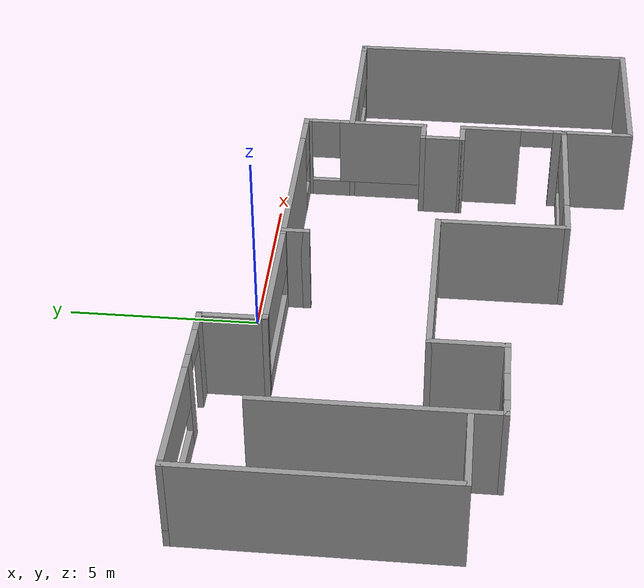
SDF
<?xml version='1.0'?>
<sdf version='1.7'>
  <model name='home'>
    <pose>1.33369 -4.43199 0 0 -0 0</pose>
    <link name='Wall_1'>
      <pose>-2.3 3.775 0 0 -0 0</pose>
      <visual name='Wall_1_Visual_0'>
        <pose>-1.7772 0 1.25 0 -0 0</pose>
        <geometry>
          <box>
            <size>0.195597 0.15 2.5</size>
          </box>
        </geometry>
        <material>
          <script>
            <uri>file://media/materials/scripts/gazebo.material</uri>
            <name>Gazebo/Grey</name>
          </script>
          <ambient>1 1 1 1</ambient>
        </material>
        <meta>
          <layer>0</layer>
        </meta>
      </visual>
      <collision name='Wall_1_Collision_0'>
        <geometry>
          <box>
            <size>0.195597 0.15 2.5</size>
          </box>
        </geometry>
        <pose>-1.7772 0 1.25 0 -0 0</pose>
      </collision>
      <visual name='Wall_1_Visual_1'>
        <pose>0.097799 0 0.25 0 -0 0</pose>
        <geometry>
          <box>
            <size>3.5544 0.15 0.5</size>
          </box>
        </geometry>
        <material>
          <script>
            <uri>file://media/materials/scripts/gazebo.material</uri>
            <name>Gazebo/Grey</name>
          </script>
          <ambient>1 1 1 1</ambient>
        </material>
        <meta>
          <layer>0</layer>
        </meta>
      </visual>
      <collision name='Wall_1_Collision_1'>
        <geometry>
          <box>
            <size>3.5544 0.15 0.5</size>
          </box>
        </geometry>
        <pose>0.097799 0 0.25 0 -0 0</pose>
      </collision>
      <visual name='Wall_1_Visual_2'>
        <pose>1.74801 0 1.5 0 -0 0</pose>
        <geometry>
          <box>
            <size>0.253984 0.15 2</size>
          </box>
        </geometry>
        <material>
          <script>
            <uri>file://media/materials/scripts/gazebo.material</uri>
            <name>Gazebo/Grey</name>
          </script>
          <ambient>1 1 1 1</ambient>
        </material>
        <meta>
          <layer>0</layer>
        </meta>
      </visual>
      <collision name='Wall_1_Collision_2'>
        <geometry>
          <box>
            <size>0.253984 0.15 2</size>
          </box>
        </geometry>
        <pose>1.74801 0 1.5 0 -0 0</pose>
      </collision>
      <visual name='Wall_1_Visual_3'>
        <pose>-0.029193 0 1.9 0 -0 0</pose>
        <geometry>
          <box>
            <size>3.30042 0.15 1.2</size>
          </box>
        </geometry>
        <material>
          <script>
            <uri>file://media/materials/scripts/gazebo.material</uri>
            <name>Gazebo/Grey</name>
          </script>
          <ambient>1 1 1 1</ambient>
        </material>
        <meta>
          <layer>0</layer>
        </meta>
      </visual>
      <collision name='Wall_1_Collision_3'>
        <geometry>
          <box>
            <size>3.30042 0.15 1.2</size>
          </box>
        </geometry>
        <pose>-0.029193 0 1.9 0 -0 0</pose>
      </collision>
    </link>
    <link name='Wall_10'>
      <pose>2.55 -3.525 0 0 -0 3.14159</pose>
      <visual name='Wall_10_Visual_0'>
        <pose>-2.27293 0 1.25 0 -0 0</pose>
        <geometry>
          <box>
            <size>0.204144 0.15 2.5</size>
          </box>
        </geometry>
        <material>
          <script>
            <uri>file://media/materials/scripts/gazebo.material</uri>
            <name>Gazebo/Grey</name>
          </script>
          <ambient>1 1 1 1</ambient>
        </material>
        <meta>
          <layer>0</layer>
        </meta>
      </visual>
      <collision name='Wall_10_Collision_0'>
        <geometry>
          <box>
            <size>0.204144 0.15 2.5</size>
          </box>
        </geometry>
        <pose>-2.27293 0 1.25 0 -0 0</pose>
      </collision>
      <visual name='Wall_10_Visual_1'>
        <pose>0.102072 0 0.25 0 -0 0</pose>
        <geometry>
          <box>
            <size>4.54586 0.15 0.5</size>
          </box>
        </geometry>
        <material>
          <script>
            <uri>file://media/materials/scripts/gazebo.material</uri>
            <name>Gazebo/Grey</name>
          </script>
          <ambient>1 1 1 1</ambient>
        </material>
        <meta>
          <layer>0</layer>
        </meta>
      </visual>
      <collision name='Wall_10_Collision_1'>
        <geometry>
          <box>
            <size>4.54586 0.15 0.5</size>
          </box>
        </geometry>
        <pose>0.102072 0 0.25 0 -0 0</pose>
      </collision>
      <visual name='Wall_10_Visual_2'>
        <pose>1.83208 0 1.5 0 -0 0</pose>
        <geometry>
          <box>
            <size>1.08584 0.15 2</size>
          </box>
        </geometry>
        <material>
          <script>
            <uri>file://media/materials/scripts/gazebo.material</uri>
            <name>Gazebo/Grey</name>
          </script>
          <ambient>1 1 1 1</ambient>
        </material>
        <meta>
          <layer>0</layer>
        </meta>
      </visual>
      <collision name='Wall_10_Collision_2'>
        <geometry>
          <box>
            <size>1.08584 0.15 2</size>
          </box>
        </geometry>
        <pose>1.83208 0 1.5 0 -0 0</pose>
      </collision>
      <visual name='Wall_10_Visual_3'>
        <pose>-0.440846 0 1.9 0 -0 0</pose>
        <geometry>
          <box>
            <size>3.46002 0.15 1.2</size>
          </box>
        </geometry>
        <material>
          <script>
            <uri>file://media/materials/scripts/gazebo.material</uri>
            <name>Gazebo/Grey</name>
          </script>
          <ambient>1 1 1 1</ambient>
        </material>
        <meta>
          <layer>0</layer>
        </meta>
      </visual>
      <collision name='Wall_10_Collision_3'>
        <geometry>
          <box>
            <size>3.46002 0.15 1.2</size>
          </box>
        </geometry>
        <pose>-0.440846 0 1.9 0 -0 0</pose>
      </collision>
    </link>
    <link name='Wall_11'>
      <collision name='Wall_11_Collision'>
        <geometry>
          <box>
            <size>3.5 0.15 2.5</size>
          </box>
        </geometry>
        <pose>0 0 1.25 0 -0 0</pose>
      </collision>
      <visual name='Wall_11_Visual'>
        <pose>0 0 1.25 0 -0 0</pose>
        <geometry>
          <box>
            <size>3.5 0.15 2.5</size>
          </box>
        </geometry>
        <material>
          <script>
            <uri>file://media/materials/scripts/gazebo.material</uri>
            <name>Gazebo/Grey</name>
          </script>
          <ambient>1 1 1 1</ambient>
        </material>
        <meta>
          <layer>0</layer>
        </meta>
      </visual>
      <pose>0.25 -1.85 0 0 -0 1.5708</pose>
    </link>
    <link name='Wall_12'>
      <collision name='Wall_12_Collision'>
        <geometry>
          <box>
            <size>5 0.15 2.5</size>
          </box>
        </geometry>
        <pose>0 0 1.25 0 -0 0</pose>
      </collision>
      <visual name='Wall_12_Visual'>
        <pose>0 0 1.25 0 -0 0</pose>
        <geometry>
          <box>
            <size>5 0.15 2.5</size>
          </box>
        </geometry>
        <material>
          <script>
            <uri>file://media/materials/scripts/gazebo.material</uri>
            <name>Gazebo/Grey</name>
          </script>
          <ambient>1 1 1 1</ambient>
        </material>
        <meta>
          <layer>0</layer>
        </meta>
      </visual>
      <pose>-2.175 -0.175 0 0 -0 3.14159</pose>
    </link>
    <link name='Wall_13'>
      <collision name='Wall_13_Collision'>
        <geometry>
          <box>
            <size>2 0.15 2.5</size>
          </box>
        </geometry>
        <pose>0 0 1.25 0 -0 0</pose>
      </collision>
      <visual name='Wall_13_Visual'>
        <pose>0 0 1.25 0 -0 0</pose>
        <geometry>
          <box>
            <size>2 0.15 2.5</size>
          </box>
        </geometry>
        <material>
          <script>
            <uri>file://media/materials/scripts/gazebo.material</uri>
            <name>Gazebo/Grey</name>
          </script>
          <ambient>1 1 1 1</ambient>
        </material>
        <meta>
          <layer>0</layer>
        </meta>
      </visual>
      <pose>-4.6 -1.1 0 0 -0 -1.5708</pose>
    </link>
    <link name='Wall_14'>
      <pose>-5.775 -2.025 0 0 -0 3.14159</pose>
      <visual name='Wall_14_Visual_0'>
        <pose>-0.710889 0 1.25 0 -0 0</pose>
        <geometry>
          <box>
            <size>1.07822 0.15 2.5</size>
          </box>
        </geometry>
        <material>
          <script>
            <uri>file://media/materials/scripts/gazebo.material</uri>
            <name>Gazebo/Grey</name>
          </script>
          <ambient>1 1 1 1</ambient>
        </material>
        <meta>
          <layer>0</layer>
        </meta>
      </visual>
      <collision name='Wall_14_Collision_0'>
        <geometry>
          <box>
            <size>1.07822 0.15 2.5</size>
          </box>
        </geometry>
        <pose>-0.710889 0 1.25 0 -0 0</pose>
      </collision>
      <visual name='Wall_14_Visual_1'>
        <pose>0.989111 0 1.25 0 -0 0</pose>
        <geometry>
          <box>
            <size>0.521779 0.15 2.5</size>
          </box>
        </geometry>
        <material>
          <script>
            <uri>file://media/materials/scripts/gazebo.material</uri>
            <name>Gazebo/Grey</name>
          </script>
          <ambient>1 1 1 1</ambient>
        </material>
        <meta>
          <layer>0</layer>
        </meta>
      </visual>
      <collision name='Wall_14_Collision_1'>
        <geometry>
          <box>
            <size>0.521779 0.15 2.5</size>
          </box>
        </geometry>
        <pose>0.989111 0 1.25 0 -0 0</pose>
      </collision>
      <visual name='Wall_14_Visual_2'>
        <pose>0.278221 0 2.25 0 -0 0</pose>
        <geometry>
          <box>
            <size>0.9 0.15 0.5</size>
          </box>
        </geometry>
        <material>
          <script>
            <uri>file://media/materials/scripts/gazebo.material</uri>
            <name>Gazebo/Grey</name>
          </script>
          <ambient>1 1 1 1</ambient>
        </material>
        <meta>
          <layer>0</layer>
        </meta>
      </visual>
      <collision name='Wall_14_Collision_2'>
        <geometry>
          <box>
            <size>0.9 0.15 0.5</size>
          </box>
        </geometry>
        <pose>0.278221 0 2.25 0 -0 0</pose>
      </collision>
    </link>
    <link name='Wall_15'>
      <collision name='Wall_15_Collision'>
        <geometry>
          <box>
            <size>6 0.15 2.5</size>
          </box>
        </geometry>
        <pose>0 0 1.25 0 -0 0</pose>
      </collision>
      <visual name='Wall_15_Visual'>
        <pose>0 0 1.25 0 -0 0</pose>
        <geometry>
          <box>
            <size>6 0.15 2.5</size>
          </box>
        </geometry>
        <material>
          <script>
            <uri>file://media/materials/scripts/gazebo.material</uri>
            <name>Gazebo/Grey</name>
          </script>
          <ambient>1 1 1 1</ambient>
        </material>
        <meta>
          <layer>0</layer>
        </meta>
      </visual>
      <pose>-6.95 0.9 0 0 -0 1.5708</pose>
    </link>
    <link name='Wall_17'>
      <collision name='Wall_17_Collision'>
        <geometry>
          <box>
            <size>1.75 0.15 2.5</size>
          </box>
        </geometry>
        <pose>0 0 1.25 0 -0 0</pose>
      </collision>
      <visual name='Wall_17_Visual'>
        <pose>0 0 1.25 0 -0 0</pose>
        <geometry>
          <box>
            <size>1.75 0.15 2.5</size>
          </box>
        </geometry>
        <material>
          <script>
            <uri>file://media/materials/scripts/gazebo.material</uri>
            <name>Gazebo/Grey</name>
          </script>
          <ambient>1 1 1 1</ambient>
        </material>
        <meta>
          <layer>0</layer>
        </meta>
      </visual>
      <pose>-4.1 4.575 0 0 -0 1.5708</pose>
    </link>
    <link name='Wall_18'>
      <pose>-6.65 5.375 0 0 -0 3.14159</pose>
      <visual name='Wall_18_Visual_0'>
        <pose>-2.28809 0 1.25 0 -0 0</pose>
        <geometry>
          <box>
            <size>0.673815 0.15 2.5</size>
          </box>
        </geometry>
        <material>
          <script>
            <uri>file://media/materials/scripts/gazebo.material</uri>
            <name>Gazebo/Grey</name>
          </script>
          <ambient>1 1 1 1</ambient>
        </material>
        <meta>
          <layer>0</layer>
        </meta>
      </visual>
      <collision name='Wall_18_Collision_0'>
        <geometry>
          <box>
            <size>0.673815 0.15 2.5</size>
          </box>
        </geometry>
        <pose>-2.28809 0 1.25 0 -0 0</pose>
      </collision>
      <visual name='Wall_18_Visual_1'>
        <pose>-0.824481 0 1.25 0 -0 0</pose>
        <geometry>
          <box>
            <size>0.45341 0.15 2.5</size>
          </box>
        </geometry>
        <material>
          <script>
            <uri>file://media/materials/scripts/gazebo.material</uri>
            <name>Gazebo/Grey</name>
          </script>
          <ambient>1 1 1 1</ambient>
        </material>
        <meta>
          <layer>0</layer>
        </meta>
      </visual>
      <collision name='Wall_18_Collision_1'>
        <geometry>
          <box>
            <size>0.45341 0.15 2.5</size>
          </box>
        </geometry>
        <pose>-0.824481 0 1.25 0 -0 0</pose>
      </collision>
      <visual name='Wall_18_Visual_2'>
        <pose>1.01361 0 0.25 0 -0 0</pose>
        <geometry>
          <box>
            <size>3.22278 0.15 0.5</size>
          </box>
        </geometry>
        <material>
          <script>
            <uri>file://media/materials/scripts/gazebo.material</uri>
            <name>Gazebo/Grey</name>
          </script>
          <ambient>1 1 1 1</ambient>
        </material>
        <meta>
          <layer>0</layer>
        </meta>
      </visual>
      <collision name='Wall_18_Collision_2'>
        <geometry>
          <box>
            <size>3.22278 0.15 0.5</size>
          </box>
        </geometry>
        <pose>1.01361 0 0.25 0 -0 0</pose>
      </collision>
      <visual name='Wall_18_Visual_3'>
        <pose>2.53082 0 1.5 0 -0 0</pose>
        <geometry>
          <box>
            <size>0.188359 0.15 2</size>
          </box>
        </geometry>
        <material>
          <script>
            <uri>file://media/materials/scripts/gazebo.material</uri>
            <name>Gazebo/Grey</name>
          </script>
          <ambient>1 1 1 1</ambient>
        </material>
        <meta>
          <layer>0</layer>
        </meta>
      </visual>
      <collision name='Wall_18_Collision_3'>
        <geometry>
          <box>
            <size>0.188359 0.15 2</size>
          </box>
        </geometry>
        <pose>2.53082 0 1.5 0 -0 0</pose>
      </collision>
      <visual name='Wall_18_Visual_4'>
        <pose>0.919433 0 1.9 0 -0 0</pose>
        <geometry>
          <box>
            <size>3.03442 0.15 1.2</size>
          </box>
        </geometry>
        <material>
          <script>
            <uri>file://media/materials/scripts/gazebo.material</uri>
            <name>Gazebo/Grey</name>
          </script>
          <ambient>1 1 1 1</ambient>
        </material>
        <meta>
          <layer>0</layer>
        </meta>
      </visual>
      <collision name='Wall_18_Collision_4'>
        <geometry>
          <box>
            <size>3.03442 0.15 1.2</size>
          </box>
        </geometry>
        <pose>0.919433 0 1.9 0 -0 0</pose>
      </collision>
      <visual name='Wall_18_Visual_5'>
        <pose>-1.50118 0 2.25 0 -0 0</pose>
        <geometry>
          <box>
            <size>0.9 0.15 0.5</size>
          </box>
        </geometry>
        <material>
          <script>
            <uri>file://media/materials/scripts/gazebo.material</uri>
            <name>Gazebo/Grey</name>
          </script>
          <ambient>1 1 1 1</ambient>
        </material>
        <meta>
          <layer>0</layer>
        </meta>
      </visual>
      <collision name='Wall_18_Collision_5'>
        <geometry>
          <box>
            <size>0.9 0.15 0.5</size>
          </box>
        </geometry>
        <pose>-1.50118 0 2.25 0 -0 0</pose>
      </collision>
    </link>
    <link name='Wall_19'>
      <collision name='Wall_19_Collision'>
        <geometry>
          <box>
            <size>6.75 0.15 2.5</size>
          </box>
        </geometry>
        <pose>0 0 1.25 0 -0 0</pose>
      </collision>
      <visual name='Wall_19_Visual'>
        <pose>0 0 1.25 0 -0 0</pose>
        <geometry>
          <box>
            <size>6.75 0.15 2.5</size>
          </box>
        </geometry>
        <material>
          <script>
            <uri>file://media/materials/scripts/gazebo.material</uri>
            <name>Gazebo/Grey</name>
          </script>
          <ambient>1 1 1 1</ambient>
        </material>
        <meta>
          <layer>0</layer>
        </meta>
      </visual>
      <pose>-9.2 2.075 0 0 -0 -1.5708</pose>
    </link>
    <link name='Wall_2'>
      <collision name='Wall_2_Collision'>
        <geometry>
          <box>
            <size>0.75 0.15 2.5</size>
          </box>
        </geometry>
        <pose>0 0 1.25 0 -0 0</pose>
      </collision>
      <visual name='Wall_2_Visual'>
        <pose>0 0 1.25 0 -0 0</pose>
        <geometry>
          <box>
            <size>0.75 0.15 2.5</size>
          </box>
        </geometry>
        <material>
          <script>
            <uri>file://media/materials/scripts/gazebo.material</uri>
            <name>Gazebo/Grey</name>
          </script>
          <ambient>1 1 1 1</ambient>
        </material>
        <meta>
          <layer>0</layer>
        </meta>
      </visual>
      <pose>-0.5 3.475 0 0 -0 -1.5708</pose>
    </link>
    <link name='Wall_20'>
      <collision name='Wall_20_Collision'>
        <geometry>
          <box>
            <size>2.25 0.15 2.5</size>
          </box>
        </geometry>
        <pose>0 0 1.25 0 -0 0</pose>
      </collision>
      <visual name='Wall_20_Visual'>
        <pose>0 0 1.25 0 -0 0</pose>
        <geometry>
          <box>
            <size>2.25 0.15 2.5</size>
          </box>
        </geometry>
        <material>
          <script>
            <uri>file://media/materials/scripts/gazebo.material</uri>
            <name>Gazebo/Grey</name>
          </script>
          <ambient>1 1 1 1</ambient>
        </material>
        <meta>
          <layer>0</layer>
        </meta>
      </visual>
      <pose>-8.15 -1.225 0 0 -0 0</pose>
    </link>
    <link name='Wall_22'>
      <collision name='Wall_22_Collision'>
        <geometry>
          <box>
            <size>2 0.15 2.5</size>
          </box>
        </geometry>
        <pose>0 0 1.25 0 -0 0</pose>
      </collision>
      <visual name='Wall_22_Visual'>
        <pose>0 0 1.25 0 -0 0</pose>
        <geometry>
          <box>
            <size>2 0.15 2.5</size>
          </box>
        </geometry>
        <material>
          <script>
            <uri>file://media/materials/scripts/gazebo.material</uri>
            <name>Gazebo/Grey</name>
          </script>
          <ambient>1 1 1 1</ambient>
        </material>
        <meta>
          <layer>0</layer>
        </meta>
      </visual>
      <pose>4.85 -4.45 0 0 -0 -1.5708</pose>
    </link>
    <link name='Wall_23'>
      <collision name='Wall_23_Collision'>
        <geometry>
          <box>
            <size>4.5 0.15 2.5</size>
          </box>
        </geometry>
        <pose>0 0 1.25 0 -0 0</pose>
      </collision>
      <visual name='Wall_23_Visual'>
        <pose>0 0 1.25 0 -0 0</pose>
        <geometry>
          <box>
            <size>4.5 0.15 2.5</size>
          </box>
        </geometry>
        <material>
          <script>
            <uri>file://media/materials/scripts/gazebo.material</uri>
            <name>Gazebo/Grey</name>
          </script>
          <ambient>1 1 1 1</ambient>
        </material>
        <meta>
          <layer>0</layer>
        </meta>
      </visual>
      <pose>7.025 -5.375 0 0 -0 0</pose>
    </link>
    <link name='Wall_24'>
      <collision name='Wall_24_Collision'>
        <geometry>
          <box>
            <size>8 0.15 2.5</size>
          </box>
        </geometry>
        <pose>0 0 1.25 0 -0 0</pose>
      </collision>
      <visual name='Wall_24_Visual'>
        <pose>0 0 1.25 0 -0 0</pose>
        <geometry>
          <box>
            <size>8 0.15 2.5</size>
          </box>
        </geometry>
        <material>
          <script>
            <uri>file://media/materials/scripts/gazebo.material</uri>
            <name>Gazebo/Grey</name>
          </script>
          <ambient>1 1 1 1</ambient>
        </material>
        <meta>
          <layer>0</layer>
        </meta>
      </visual>
      <pose>9.2 -1.45 0 0 -0 1.5708</pose>
    </link>
    <link name='Wall_25'>
      <pose>7.025 2.475 0 0 -0 3.14159</pose>
      <visual name='Wall_25_Visual_0'>
        <pose>-2.08764 0 1.25 0 -0 0</pose>
        <geometry>
          <box>
            <size>0.324712 0.15 2.5</size>
          </box>
        </geometry>
        <material>
          <script>
            <uri>file://media/materials/scripts/gazebo.material</uri>
            <name>Gazebo/Grey</name>
          </script>
          <ambient>1 1 1 1</ambient>
        </material>
        <meta>
          <layer>0</layer>
        </meta>
      </visual>
      <collision name='Wall_25_Collision_0'>
        <geometry>
          <box>
            <size>0.324712 0.15 2.5</size>
          </box>
        </geometry>
        <pose>-2.08764 0 1.25 0 -0 0</pose>
      </collision>
      <visual name='Wall_25_Visual_1'>
        <pose>0.162356 0 0.25 0 -0 0</pose>
        <geometry>
          <box>
            <size>4.17529 0.15 0.5</size>
          </box>
        </geometry>
        <material>
          <script>
            <uri>file://media/materials/scripts/gazebo.material</uri>
            <name>Gazebo/Grey</name>
          </script>
          <ambient>1 1 1 1</ambient>
        </material>
        <meta>
          <layer>0</layer>
        </meta>
      </visual>
      <collision name='Wall_25_Collision_1'>
        <geometry>
          <box>
            <size>4.17529 0.15 0.5</size>
          </box>
        </geometry>
        <pose>0.162356 0 0.25 0 -0 0</pose>
      </collision>
      <visual name='Wall_25_Visual_2'>
        <pose>1.54656 0 1.5 0 -0 0</pose>
        <geometry>
          <box>
            <size>1.40687 0.15 2</size>
          </box>
        </geometry>
        <material>
          <script>
            <uri>file://media/materials/scripts/gazebo.material</uri>
            <name>Gazebo/Grey</name>
          </script>
          <ambient>1 1 1 1</ambient>
        </material>
        <meta>
          <layer>0</layer>
        </meta>
      </visual>
      <collision name='Wall_25_Collision_2'>
        <geometry>
          <box>
            <size>1.40687 0.15 2</size>
          </box>
        </geometry>
        <pose>1.54656 0 1.5 0 -0 0</pose>
      </collision>
      <visual name='Wall_25_Visual_3'>
        <pose>-0.54108 0 1.9 0 -0 0</pose>
        <geometry>
          <box>
            <size>2.76842 0.15 1.2</size>
          </box>
        </geometry>
        <material>
          <script>
            <uri>file://media/materials/scripts/gazebo.material</uri>
            <name>Gazebo/Grey</name>
          </script>
          <ambient>1 1 1 1</ambient>
        </material>
        <meta>
          <layer>0</layer>
        </meta>
      </visual>
      <collision name='Wall_25_Collision_3'>
        <geometry>
          <box>
            <size>2.76842 0.15 1.2</size>
          </box>
        </geometry>
        <pose>-0.54108 0 1.9 0 -0 0</pose>
      </collision>
    </link>
    <link name='Wall_3'>
      <collision name='Wall_3_Collision'>
        <geometry>
          <box>
            <size>0.75 0.15 2.5</size>
          </box>
        </geometry>
        <pose>0 0 1.25 0 -0 0</pose>
      </collision>
      <visual name='Wall_3_Visual'>
        <pose>0 0 1.25 0 -0 0</pose>
        <geometry>
          <box>
            <size>0.75 0.15 2.5</size>
          </box>
        </geometry>
        <material>
          <script>
            <uri>file://media/materials/scripts/gazebo.material</uri>
            <name>Gazebo/Grey</name>
          </script>
          <ambient>1 1 1 1</ambient>
        </material>
        <meta>
          <layer>0</layer>
        </meta>
      </visual>
      <pose>-0.5 3.475 0 0 -0 1.5708</pose>
    </link>
    <link name='Wall_4'>
      <pose>2.175 3.775 0 0 -0 0</pose>
      <visual name='Wall_4_Visual_0'>
        <pose>-0.528672 0 1.25 0 -0 0</pose>
        <geometry>
          <box>
            <size>4.44266 0.15 2.5</size>
          </box>
        </geometry>
        <material>
          <script>
            <uri>file://media/materials/scripts/gazebo.material</uri>
            <name>Gazebo/Grey</name>
          </script>
          <ambient>1 1 1 1</ambient>
        </material>
        <meta>
          <layer>0</layer>
        </meta>
      </visual>
      <collision name='Wall_4_Collision_0'>
        <geometry>
          <box>
            <size>4.44266 0.15 2.5</size>
          </box>
        </geometry>
        <pose>-0.528672 0 1.25 0 -0 0</pose>
      </collision>
      <visual name='Wall_4_Visual_1'>
        <pose>2.22133 0 0.25 0 -0 0</pose>
        <geometry>
          <box>
            <size>1.05734 0.15 0.5</size>
          </box>
        </geometry>
        <material>
          <script>
            <uri>file://media/materials/scripts/gazebo.material</uri>
            <name>Gazebo/Grey</name>
          </script>
          <ambient>1 1 1 1</ambient>
        </material>
        <meta>
          <layer>0</layer>
        </meta>
      </visual>
      <collision name='Wall_4_Collision_1'>
        <geometry>
          <box>
            <size>1.05734 0.15 0.5</size>
          </box>
        </geometry>
        <pose>2.22133 0 0.25 0 -0 0</pose>
      </collision>
      <visual name='Wall_4_Visual_2'>
        <pose>2.62133 0 1.5 0 -0 0</pose>
        <geometry>
          <box>
            <size>0.257344 0.15 2</size>
          </box>
        </geometry>
        <material>
          <script>
            <uri>file://media/materials/scripts/gazebo.material</uri>
            <name>Gazebo/Grey</name>
          </script>
          <ambient>1 1 1 1</ambient>
        </material>
        <meta>
          <layer>0</layer>
        </meta>
      </visual>
      <collision name='Wall_4_Collision_2'>
        <geometry>
          <box>
            <size>0.257344 0.15 2</size>
          </box>
        </geometry>
        <pose>2.62133 0 1.5 0 -0 0</pose>
      </collision>
      <visual name='Wall_4_Visual_3'>
        <pose>2.09266 0 1.9 0 -0 0</pose>
        <geometry>
          <box>
            <size>0.8 0.15 1.2</size>
          </box>
        </geometry>
        <material>
          <script>
            <uri>file://media/materials/scripts/gazebo.material</uri>
            <name>Gazebo/Grey</name>
          </script>
          <ambient>1 1 1 1</ambient>
        </material>
        <meta>
          <layer>0</layer>
        </meta>
      </visual>
      <collision name='Wall_4_Collision_3'>
        <geometry>
          <box>
            <size>0.8 0.15 1.2</size>
          </box>
        </geometry>
        <pose>2.09266 0 1.9 0 -0 0</pose>
      </collision>
    </link>
    <link name='Wall_5'>
      <pose>4.85 2.1 0 0 -0 -1.5708</pose>
      <visual name='Wall_5_Visual_0'>
        <pose>-1.63495 0 1.25 0 -0 0</pose>
        <geometry>
          <box>
            <size>0.230105 0.15 2.5</size>
          </box>
        </geometry>
        <material>
          <script>
            <uri>file://media/materials/scripts/gazebo.material</uri>
            <name>Gazebo/Grey</name>
          </script>
          <ambient>1 1 1 1</ambient>
        </material>
        <meta>
          <layer>0</layer>
        </meta>
      </visual>
      <collision name='Wall_5_Collision_0'>
        <geometry>
          <box>
            <size>0.230105 0.15 2.5</size>
          </box>
        </geometry>
        <pose>-1.63495 0 1.25 0 -0 0</pose>
      </collision>
      <visual name='Wall_5_Visual_1'>
        <pose>0.115053 0 0.25 0 -0 0</pose>
        <geometry>
          <box>
            <size>3.26989 0.15 0.5</size>
          </box>
        </geometry>
        <material>
          <script>
            <uri>file://media/materials/scripts/gazebo.material</uri>
            <name>Gazebo/Grey</name>
          </script>
          <ambient>1 1 1 1</ambient>
        </material>
        <meta>
          <layer>0</layer>
        </meta>
      </visual>
      <collision name='Wall_5_Collision_1'>
        <geometry>
          <box>
            <size>3.26989 0.15 0.5</size>
          </box>
        </geometry>
        <pose>0.115053 0 0.25 0 -0 0</pose>
      </collision>
      <visual name='Wall_5_Visual_2'>
        <pose>0.515053 0 1.5 0 -0 0</pose>
        <geometry>
          <box>
            <size>2.4699 0.15 2</size>
          </box>
        </geometry>
        <material>
          <script>
            <uri>file://media/materials/scripts/gazebo.material</uri>
            <name>Gazebo/Grey</name>
          </script>
          <ambient>1 1 1 1</ambient>
        </material>
        <meta>
          <layer>0</layer>
        </meta>
      </visual>
      <collision name='Wall_5_Collision_2'>
        <geometry>
          <box>
            <size>2.4699 0.15 2</size>
          </box>
        </geometry>
        <pose>0.515053 0 1.5 0 -0 0</pose>
      </collision>
      <visual name='Wall_5_Visual_3'>
        <pose>-1.1199 0 1.9 0 -0 0</pose>
        <geometry>
          <box>
            <size>0.8 0.15 1.2</size>
          </box>
        </geometry>
        <material>
          <script>
            <uri>file://media/materials/scripts/gazebo.material</uri>
            <name>Gazebo/Grey</name>
          </script>
          <ambient>1 1 1 1</ambient>
        </material>
        <meta>
          <layer>0</layer>
        </meta>
      </visual>
      <collision name='Wall_5_Collision_3'>
        <geometry>
          <box>
            <size>0.8 0.15 1.2</size>
          </box>
        </geometry>
        <pose>-1.1199 0 1.9 0 -0 0</pose>
      </collision>
    </link>
    <link name='Wall_6'>
      <collision name='Wall_6_Collision'>
        <geometry>
          <box>
            <size>0.75 0.15 2.5</size>
          </box>
        </geometry>
        <pose>0 0 1.25 0 -0 0</pose>
      </collision>
      <visual name='Wall_6_Visual'>
        <pose>0 0 1.25 0 -0 0</pose>
        <geometry>
          <box>
            <size>0.75 0.15 2.5</size>
          </box>
        </geometry>
        <material>
          <script>
            <uri>file://media/materials/scripts/gazebo.material</uri>
            <name>Gazebo/Grey</name>
          </script>
          <ambient>1 1 1 1</ambient>
        </material>
        <meta>
          <layer>0</layer>
        </meta>
      </visual>
      <pose>4.55 0.425 0 0 -0 3.14159</pose>
    </link>
    <link name='Wall_7'>
      <collision name='Wall_7_Collision'>
        <geometry>
          <box>
            <size>1.25 0.15 2.5</size>
          </box>
        </geometry>
        <pose>0 0 1.25 0 -0 0</pose>
      </collision>
      <visual name='Wall_7_Visual'>
        <pose>0 0 1.25 0 -0 0</pose>
        <geometry>
          <box>
            <size>1.25 0.15 2.5</size>
          </box>
        </geometry>
        <material>
          <script>
            <uri>file://media/materials/scripts/gazebo.material</uri>
            <name>Gazebo/Grey</name>
          </script>
          <ambient>1 1 1 1</ambient>
        </material>
        <meta>
          <layer>0</layer>
        </meta>
      </visual>
      <pose>4.25 -0.125 0 0 -0 -1.5708</pose>
    </link>
    <link name='Wall_8'>
      <collision name='Wall_8_Collision'>
        <geometry>
          <box>
            <size>0.75 0.15 2.5</size>
          </box>
        </geometry>
        <pose>0 0 1.25 0 -0 0</pose>
      </collision>
      <visual name='Wall_8_Visual'>
        <pose>0 0 1.25 0 -0 0</pose>
        <geometry>
          <box>
            <size>0.75 0.15 2.5</size>
          </box>
        </geometry>
        <material>
          <script>
            <uri>file://media/materials/scripts/gazebo.material</uri>
            <name>Gazebo/Grey</name>
          </script>
          <ambient>1 1 1 1</ambient>
        </material>
        <meta>
          <layer>0</layer>
        </meta>
      </visual>
      <pose>4.55 -0.675 0 0 -0 0</pose>
    </link>
    <link name='Wall_9'>
      <pose>4.85 -2.1 0 0 -0 -1.5708</pose>
      <visual name='Wall_9_Visual_0'>
        <pose>-0.642425 0 1.25 0 -0 0</pose>
        <geometry>
          <box>
            <size>1.71515 0.15 2.5</size>
          </box>
        </geometry>
        <material>
          <script>
            <uri>file://media/materials/scripts/gazebo.material</uri>
            <name>Gazebo/Grey</name>
          </script>
          <ambient>1 1 1 1</ambient>
        </material>
        <meta>
          <layer>0</layer>
        </meta>
      </visual>
      <collision name='Wall_9_Collision_0'>
        <geometry>
          <box>
            <size>1.71515 0.15 2.5</size>
          </box>
        </geometry>
        <pose>-0.642425 0 1.25 0 -0 0</pose>
      </collision>
      <visual name='Wall_9_Visual_1'>
        <pose>1.30757 0 1.25 0 -0 0</pose>
        <geometry>
          <box>
            <size>0.38485 0.15 2.5</size>
          </box>
        </geometry>
        <material>
          <script>
            <uri>file://media/materials/scripts/gazebo.material</uri>
            <name>Gazebo/Grey</name>
          </script>
          <ambient>1 1 1 1</ambient>
        </material>
        <meta>
          <layer>0</layer>
        </meta>
      </visual>
      <collision name='Wall_9_Collision_1'>
        <geometry>
          <box>
            <size>0.38485 0.15 2.5</size>
          </box>
        </geometry>
        <pose>1.30757 0 1.25 0 -0 0</pose>
      </collision>
      <visual name='Wall_9_Visual_2'>
        <pose>0.66515 0 2.25 0 -0 0</pose>
        <geometry>
          <box>
            <size>0.9 0.15 0.5</size>
          </box>
        </geometry>
        <material>
          <script>
            <uri>file://media/materials/scripts/gazebo.material</uri>
            <name>Gazebo/Grey</name>
          </script>
          <ambient>1 1 1 1</ambient>
        </material>
        <meta>
          <layer>0</layer>
        </meta>
      </visual>
      <collision name='Wall_9_Collision_2'>
        <geometry>
          <box>
            <size>0.9 0.15 0.5</size>
          </box>
        </geometry>
        <pose>0.66515 0 2.25 0 -0 0</pose>
      </collision>
    </link>
    <static>1</static>
  </model>
</sdf>
